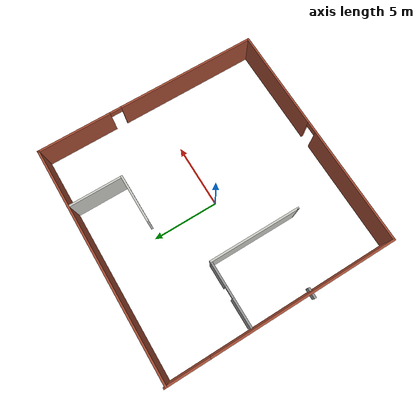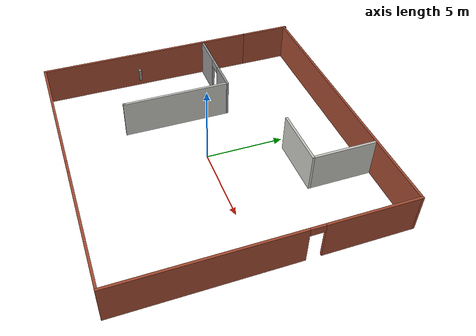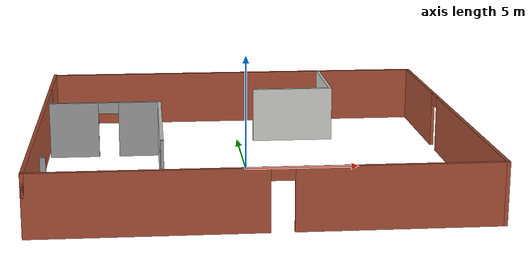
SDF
<?xml version='1.0'?>
<sdf version='1.6'>
  <model name='sample'>
    <pose frame=''>0.137432 0.286239 0 0 -0 0</pose>
    <link name='Wall_14'>
      <collision name='Wall_14_Collision'>
        <geometry>
          <box>
            <size>14.25 0.15 2.5</size>
          </box>
        </geometry>
        <pose frame=''>0 0 1.25 0 -0 0</pose>
      </collision>
      <visual name='Wall_14_Visual'>
        <pose frame=''>0 0 1.25 0 -0 0</pose>
        <geometry>
          <box>
            <size>14.25 0.15 2.5</size>
          </box>
        </geometry>
        <material>
          <script>
            <uri>file://media/materials/scripts/gazebo.material</uri>
            <name>Gazebo/Bricks</name>
          </script>
          <ambient>1 1 1 1</ambient>
        </material>
        <meta>
          <layer>0</layer>
        </meta>
      </visual>
      <pose frame=''>-8.925 -1.675 0 0 -0 -1.5708</pose>
    </link>
    <link name='Wall_15'>
      <pose frame=''>-0 -8.725 0 0 -0 0</pose>
      <visual name='Wall_15_Visual_0'>
        <pose frame=''>-4.46173 0 1.25 0 -0 0</pose>
        <geometry>
          <box>
            <size>9.07653 0.15 2.5</size>
          </box>
        </geometry>
        <material>
          <script>
            <uri>file://media/materials/scripts/gazebo.material</uri>
            <name>Gazebo/Bricks</name>
          </script>
          <ambient>1 1 1 1</ambient>
        </material>
        <meta>
          <layer>0</layer>
        </meta>
      </visual>
      <collision name='Wall_15_Collision_0'>
        <geometry>
          <box>
            <size>9.07653 0.15 2.5</size>
          </box>
        </geometry>
        <pose frame=''>-4.46173 0 1.25 0 -0 0</pose>
      </collision>
      <visual name='Wall_15_Visual_1'>
        <pose frame=''>4.98827 0 1.25 0 -0 0</pose>
        <geometry>
          <box>
            <size>8.02346 0.15 2.5</size>
          </box>
        </geometry>
        <material>
          <script>
            <uri>file://media/materials/scripts/gazebo.material</uri>
            <name>Gazebo/Bricks</name>
          </script>
          <ambient>1 1 1 1</ambient>
        </material>
        <meta>
          <layer>0</layer>
        </meta>
      </visual>
      <collision name='Wall_15_Collision_1'>
        <geometry>
          <box>
            <size>8.02346 0.15 2.5</size>
          </box>
        </geometry>
        <pose frame=''>4.98827 0 1.25 0 -0 0</pose>
      </collision>
      <visual name='Wall_15_Visual_2'>
        <pose frame=''>0.526535 0 2.25 0 -0 0</pose>
        <geometry>
          <box>
            <size>0.9 0.15 0.5</size>
          </box>
        </geometry>
        <material>
          <script>
            <uri>file://media/materials/scripts/gazebo.material</uri>
            <name>Gazebo/Bricks</name>
          </script>
          <ambient>1 1 1 1</ambient>
        </material>
        <meta>
          <layer>0</layer>
        </meta>
      </visual>
      <collision name='Wall_15_Collision_2'>
        <geometry>
          <box>
            <size>0.9 0.15 0.5</size>
          </box>
        </geometry>
        <pose frame=''>0.526535 0 2.25 0 -0 0</pose>
      </collision>
    </link>
    <link name='Wall_16'>
      <pose frame=''>8.925 -0.05 0 0 -0 1.5708</pose>
      <visual name='Wall_16_Visual_0'>
        <pose frame=''>-3.30487 0 1.25 0 -0 0</pose>
        <geometry>
          <box>
            <size>10.8903 0.15 2.5</size>
          </box>
        </geometry>
        <material>
          <script>
            <uri>file://media/materials/scripts/gazebo.material</uri>
            <name>Gazebo/Bricks</name>
          </script>
          <ambient>1 1 1 1</ambient>
        </material>
        <meta>
          <layer>0</layer>
        </meta>
      </visual>
      <collision name='Wall_16_Collision_0'>
        <geometry>
          <box>
            <size>10.8903 0.15 2.5</size>
          </box>
        </geometry>
        <pose frame=''>-3.30487 0 1.25 0 -0 0</pose>
      </collision>
      <visual name='Wall_16_Visual_1'>
        <pose frame=''>5.89513 0 1.25 0 -0 0</pose>
        <geometry>
          <box>
            <size>5.70974 0.15 2.5</size>
          </box>
        </geometry>
        <material>
          <script>
            <uri>file://media/materials/scripts/gazebo.material</uri>
            <name>Gazebo/Bricks</name>
          </script>
          <ambient>1 1 1 1</ambient>
        </material>
        <meta>
          <layer>0</layer>
        </meta>
      </visual>
      <collision name='Wall_16_Collision_1'>
        <geometry>
          <box>
            <size>5.70974 0.15 2.5</size>
          </box>
        </geometry>
        <pose frame=''>5.89513 0 1.25 0 -0 0</pose>
      </collision>
      <visual name='Wall_16_Visual_2'>
        <pose frame=''>2.59026 0 2.25 0 -0 0</pose>
        <geometry>
          <box>
            <size>0.9 0.15 0.5</size>
          </box>
        </geometry>
        <material>
          <script>
            <uri>file://media/materials/scripts/gazebo.material</uri>
            <name>Gazebo/Bricks</name>
          </script>
          <ambient>1 1 1 1</ambient>
        </material>
        <meta>
          <layer>0</layer>
        </meta>
      </visual>
      <collision name='Wall_16_Collision_2'>
        <geometry>
          <box>
            <size>0.9 0.15 0.5</size>
          </box>
        </geometry>
        <pose frame=''>2.59026 0 2.25 0 -0 0</pose>
      </collision>
    </link>
    <link name='Wall_18'>
      <collision name='Wall_18_Collision'>
        <geometry>
          <box>
            <size>3.5 0.15 2.5</size>
          </box>
        </geometry>
        <pose frame=''>0 0 1.25 0 -0 0</pose>
      </collision>
      <visual name='Wall_18_Visual'>
        <pose frame=''>0 0 1.25 0 -0 0</pose>
        <geometry>
          <box>
            <size>3.5 0.15 2.5</size>
          </box>
        </geometry>
        <material>
          <script>
            <uri>file://media/materials/scripts/gazebo.material</uri>
            <name>Gazebo/Bricks</name>
          </script>
          <ambient>1 1 1 1</ambient>
        </material>
        <meta>
          <layer>0</layer>
        </meta>
      </visual>
      <pose frame=''>-8.925 7.05 0 0 -0 1.5708</pose>
    </link>
    <link name='Wall_27'>
      <collision name='Wall_27_Collision'>
        <geometry>
          <box>
            <size>18 0.15 2.5</size>
          </box>
        </geometry>
        <pose frame=''>0 0 1.25 0 -0 0</pose>
      </collision>
      <visual name='Wall_27_Visual'>
        <pose frame=''>0 0 1.25 0 -0 0</pose>
        <geometry>
          <box>
            <size>18 0.15 2.5</size>
          </box>
        </geometry>
        <material>
          <script>
            <uri>file://media/materials/scripts/gazebo.material</uri>
            <name>Gazebo/Bricks</name>
          </script>
          <ambient>1 1 1 1</ambient>
        </material>
        <meta>
          <layer>0</layer>
        </meta>
      </visual>
      <pose frame=''>-0 8.625 0 0 -0 3.14159</pose>
    </link>
    <link name='Wall_32'>
      <collision name='Wall_32_Collision'>
        <geometry>
          <box>
            <size>0.15 0.15 2.5</size>
          </box>
        </geometry>
        <pose frame=''>0 0 1.25 0 -0 0</pose>
      </collision>
      <visual name='Wall_32_Visual'>
        <pose frame=''>0 0 1.25 0 -0 0</pose>
        <geometry>
          <box>
            <size>0.15 0.15 2.5</size>
          </box>
        </geometry>
        <material>
          <script>
            <uri>file://media/materials/scripts/gazebo.material</uri>
            <name>Gazebo/Grey</name>
          </script>
          <ambient>1 1 1 1</ambient>
        </material>
        <meta>
          <layer>0</layer>
        </meta>
      </visual>
      <pose frame=''>-3.84069 -4.51388 0 0 -0 0</pose>
    </link>
    <link name='Wall_35'>
      <collision name='Wall_35_Collision'>
        <geometry>
          <box>
            <size>7 0.15 2.5</size>
          </box>
        </geometry>
        <pose frame=''>0 0 1.25 0 -0 0</pose>
      </collision>
      <visual name='Wall_35_Visual'>
        <pose frame=''>0 0 1.25 0 -0 0</pose>
        <geometry>
          <box>
            <size>7 0.15 2.5</size>
          </box>
        </geometry>
        <material>
          <script>
            <uri>file://media/materials/scripts/gazebo.material</uri>
            <name>Gazebo/CeilingTiled</name>
          </script>
          <ambient>1 1 1 1</ambient>
        </material>
        <meta>
          <layer>0</layer>
        </meta>
      </visual>
      <pose frame=''>-3.84069 -1.08888 0 0 -0 1.5708</pose>
    </link>
    <link name='Wall_36'>
      <pose frame=''>-6.26569 2.33612 0 0 -0 3.14159</pose>
      <visual name='Wall_36_Visual_0'>
        <pose frame=''>-1.54465 0 1.25 0 -0 0</pose>
        <geometry>
          <box>
            <size>1.9107 0.15 2.5</size>
          </box>
        </geometry>
        <material>
          <script>
            <uri>file://media/materials/scripts/gazebo.material</uri>
            <name>Gazebo/Grey</name>
          </script>
          <ambient>1 1 1 1</ambient>
        </material>
        <meta>
          <layer>0</layer>
        </meta>
      </visual>
      <collision name='Wall_36_Collision_0'>
        <geometry>
          <box>
            <size>1.9107 0.15 2.5</size>
          </box>
        </geometry>
        <pose frame=''>-1.54465 0 1.25 0 -0 0</pose>
      </collision>
      <visual name='Wall_36_Visual_1'>
        <pose frame=''>1.40535 0 1.25 0 -0 0</pose>
        <geometry>
          <box>
            <size>2.1893 0.15 2.5</size>
          </box>
        </geometry>
        <material>
          <script>
            <uri>file://media/materials/scripts/gazebo.material</uri>
            <name>Gazebo/Grey</name>
          </script>
          <ambient>1 1 1 1</ambient>
        </material>
        <meta>
          <layer>0</layer>
        </meta>
      </visual>
      <collision name='Wall_36_Collision_1'>
        <geometry>
          <box>
            <size>2.1893 0.15 2.5</size>
          </box>
        </geometry>
        <pose frame=''>1.40535 0 1.25 0 -0 0</pose>
      </collision>
      <visual name='Wall_36_Visual_2'>
        <pose frame=''>-0.139299 0 2.25 0 -0 0</pose>
        <geometry>
          <box>
            <size>0.9 0.15 0.5</size>
          </box>
        </geometry>
        <material>
          <script>
            <uri>file://media/materials/scripts/gazebo.material</uri>
            <name>Gazebo/Grey</name>
          </script>
          <ambient>1 1 1 1</ambient>
        </material>
        <meta>
          <layer>0</layer>
        </meta>
      </visual>
      <collision name='Wall_36_Collision_2'>
        <geometry>
          <box>
            <size>0.9 0.15 0.5</size>
          </box>
        </geometry>
        <pose frame=''>-0.139299 0 2.25 0 -0 0</pose>
      </collision>
    </link>
    <link name='Wall_38'>
      <collision name='Wall_38_Collision'>
        <geometry>
          <box>
            <size>4.25 0.15 2.5</size>
          </box>
        </geometry>
        <pose frame=''>0 0 1.25 0 -0 0</pose>
      </collision>
      <visual name='Wall_38_Visual'>
        <pose frame=''>0 0 1.25 0 -0 0</pose>
        <geometry>
          <box>
            <size>4.25 0.15 2.5</size>
          </box>
        </geometry>
        <material>
          <script>
            <uri>file://media/materials/scripts/gazebo.material</uri>
            <name>Gazebo/CeilingTiled</name>
          </script>
          <ambient>1 1 1 1</ambient>
        </material>
        <meta>
          <layer>0</layer>
        </meta>
      </visual>
      <pose frame=''>4.29497 6.5849 0 0 -0 -1.5708</pose>
    </link>
    <link name='Wall_39'>
      <collision name='Wall_39_Collision'>
        <geometry>
          <box>
            <size>3.75 0.15 2.5</size>
          </box>
        </geometry>
        <pose frame=''>0 0 1.25 0 -0 0</pose>
      </collision>
      <visual name='Wall_39_Visual'>
        <pose frame=''>0 0 1.25 0 -0 0</pose>
        <geometry>
          <box>
            <size>3.75 0.15 2.5</size>
          </box>
        </geometry>
        <material>
          <script>
            <uri>file://media/materials/scripts/gazebo.material</uri>
            <name>Gazebo/CeilingTiled</name>
          </script>
          <ambient>1 1 1 1</ambient>
        </material>
        <meta>
          <layer>0</layer>
        </meta>
      </visual>
      <pose frame=''>2.49497 4.53489 0 0 -0 3.14159</pose>
    </link>
    <link name='Window_0'>
      <collision name='Window_0_Collision'>
        <geometry>
          <box>
            <size>0.8 0.17 0.8</size>
          </box>
        </geometry>
        <pose frame=''>0 0 0.4 0 -0 0</pose>
      </collision>
      <visual name='Window_0_Visual'>
        <pose frame=''>0 0 0.4 0 -0 0</pose>
        <geometry>
          <box>
            <size>0.8 0.17 0.8</size>
          </box>
        </geometry>
        <material>
          <script>
            <uri>file://media/materials/scripts/gazebo.material</uri>
            <name>Gazebo/Grey</name>
          </script>
        </material>
      </visual>
      <pose frame=''>-9.01087 -2.39127 0.5 0 -0 0</pose>
    </link>
    <static>1</static>
  </model>
</sdf>
